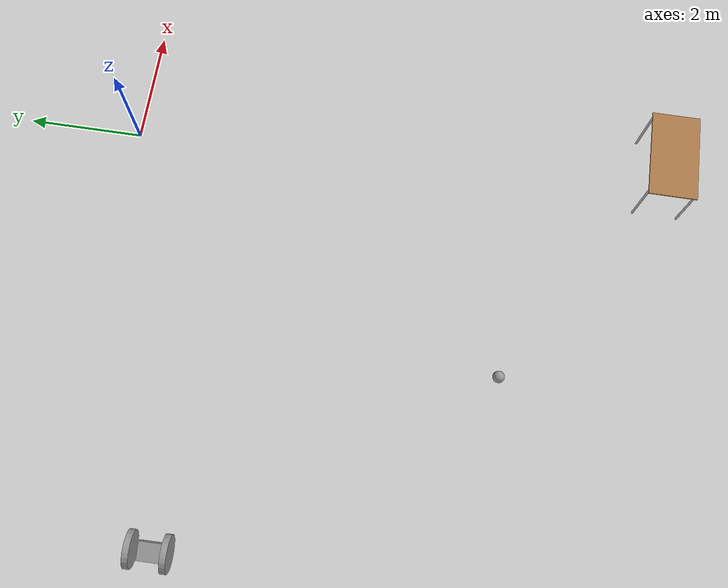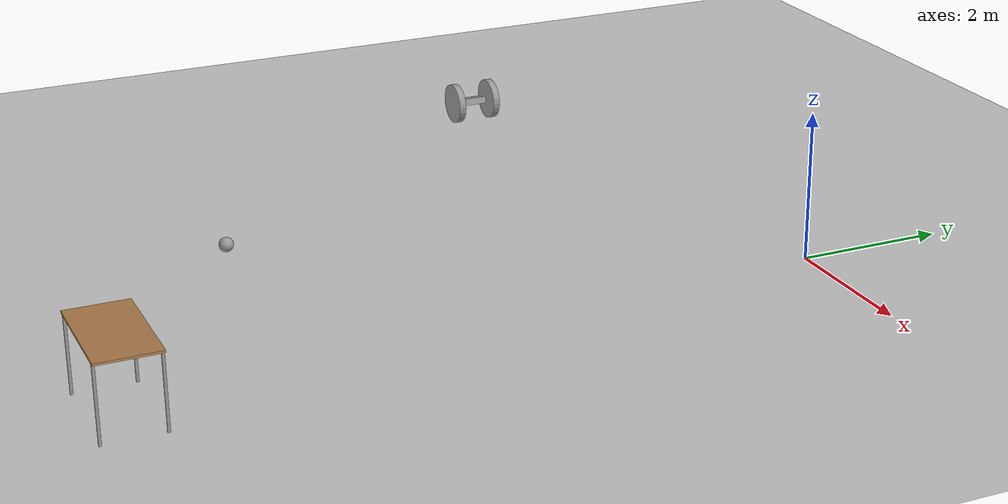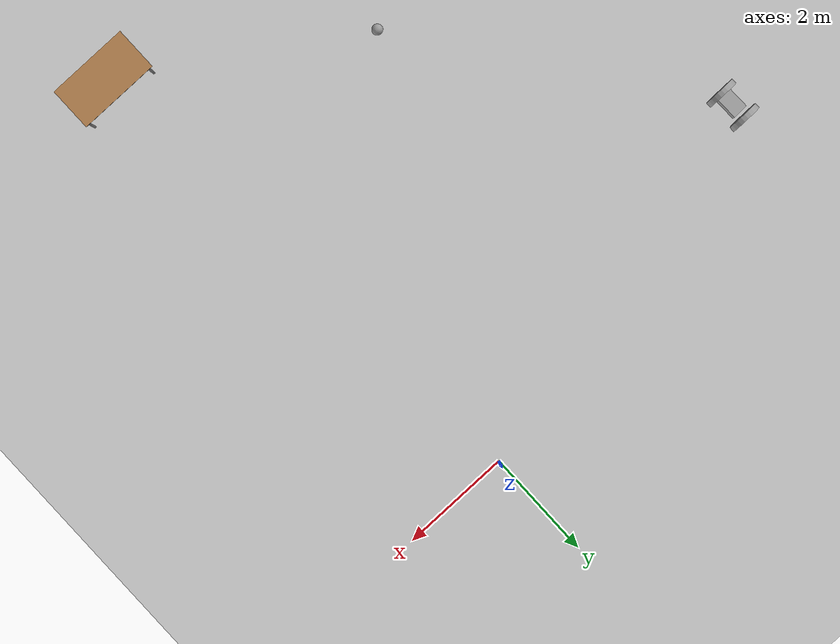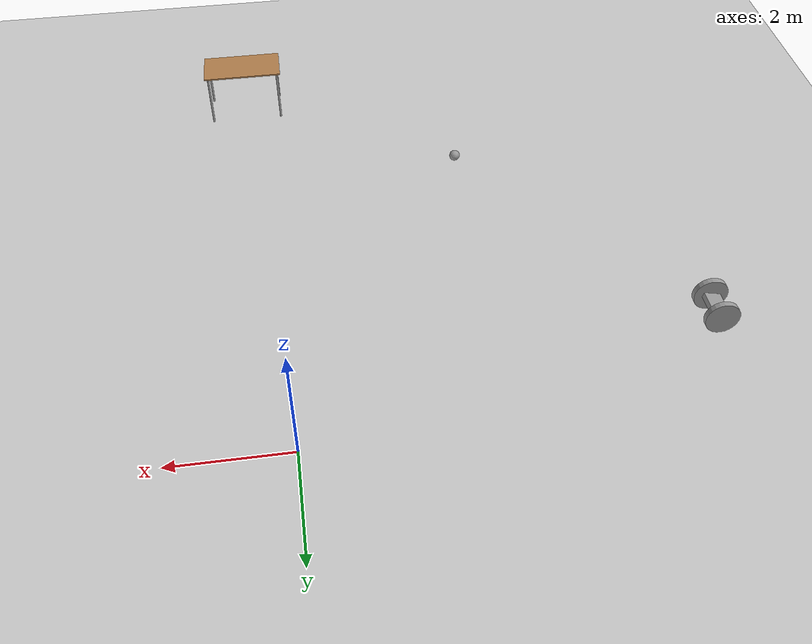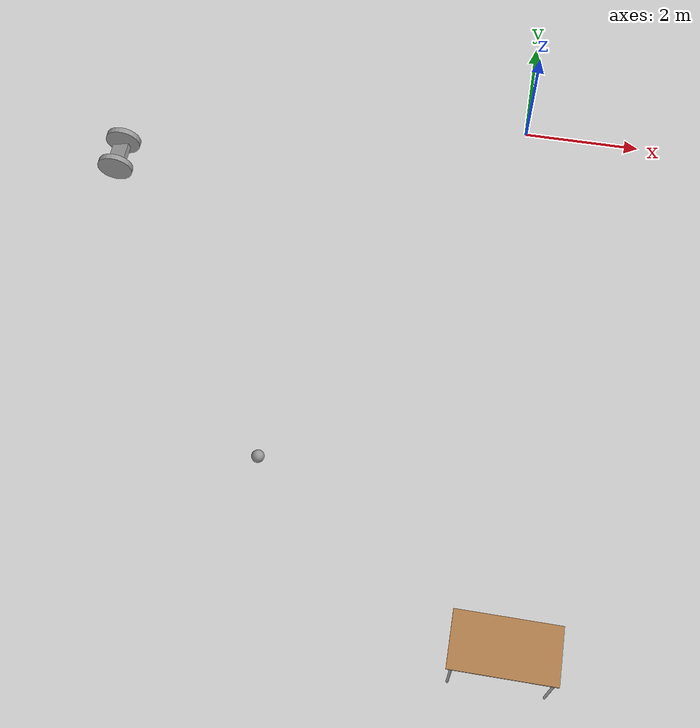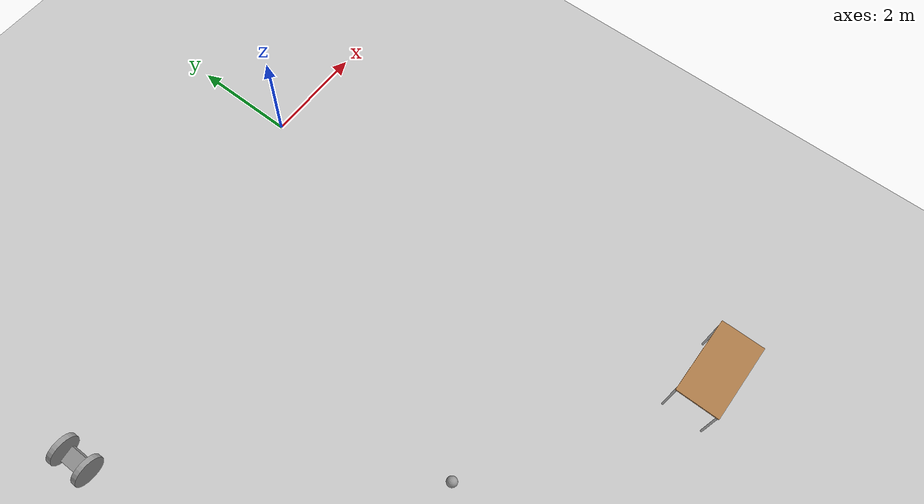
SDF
<sdf version="1.6">
 <world name="default">
  <model name="ground_plane">
   <static>1</static>
   <link name="link">
    <collision name="collision">
     <geometry><plane><normal>0 0 1</normal><size>100 100</size></plane></geometry>
     <surface>
      <contact><collide_bitmask>65535</collide_bitmask></contact>
      <friction><ode><mu>100</mu><mu2>50</mu2></ode></friction>
     </surface>
    </collision>
    <visual name="visual">
     <cast_shadows>0</cast_shadows>
     <geometry><plane><normal>0 0 1</normal><size>100 100</size></plane></geometry>
     <material>
      <script><uri>file://media/materials/scripts/gazebo.material</uri><name>Gazebo/Grey</name></script>
     </material>
    </visual>
   </link>
  </model>
  <model name="two_wheel_robot">
   <link name="link_0_clone">
    <pose>-4e-06 -0.250033 -1e-06 1.5707 -0 0</pose>
    <inertial>
     <mass>1</mass>
     <inertia><ixx>0.145833</ixx><ixy>0</ixy><ixz>0</ixz><iyy>0.145833</iyy><iyz>0</iyz><izz>0.125</izz></inertia>
    </inertial>
    <visual name="visual">
     <geometry><cylinder><radius>0.3</radius><length>0.1</length></cylinder></geometry>
     <material>
      <lighting>1</lighting>
      <script><uri>file://media/materials/scripts/gazebo.material</uri><name>Gazebo/Grey</name></script>
      <shader type="pixel"><normal_map>__default__</normal_map></shader>
      <ambient>0.3 0.3 0.3 1</ambient>
      <diffuse>0.7 0.7 0.7 1</diffuse>
      <specular>0.01 0.01 0.01 1</specular>
      <emissive>0 0 0 1</emissive>
     </material>
    </visual>
    <collision name="collision">
     <geometry><cylinder><radius>0.3</radius><length>0.1</length></cylinder></geometry>
     <surface>
      <friction>
       <ode><mu>1</mu><mu2>1</mu2><fdir1>0 0 0</fdir1><slip1>0</slip1><slip2>0</slip2></ode>
       <torsional>
        <coefficient>1</coefficient>
        <patch_radius>0</patch_radius>
        <surface_radius>0</surface_radius>
        <use_patch_radius>1</use_patch_radius>
        <ode><slip>0</slip></ode>
       </torsional>
      </friction>
      <bounce><restitution_coefficient>0</restitution_coefficient><threshold>1e+06</threshold></bounce>
      <contact>
       <collide_without_contact>0</collide_without_contact>
       <collide_without_contact_bitmask>1</collide_without_contact_bitmask>
       <collide_bitmask>1</collide_bitmask>
       <ode>
        <soft_cfm>0</soft_cfm>
        <soft_erp>0.2</soft_erp>
        <kp>1e+13</kp>
        <kd>1</kd>
        <max_vel>0.01</max_vel>
        <min_depth>0</min_depth>
       </ode>
       <bullet>
        <split_impulse>1</split_impulse>
        <split_impulse_penetration_threshold>-0.01</split_impulse_penetration_threshold>
        <soft_cfm>0</soft_cfm>
        <soft_erp>0.2</soft_erp>
        <kp>1e+13</kp>
        <kd>1</kd>
       </bullet>
      </contact>
     </surface>
    </collision>
   </link>
   <link name="link_0_clone_clone">
    <pose>0 0.319647 1e-06 1.5707 -0 0</pose>
    <inertial>
     <mass>1</mass>
     <inertia><ixx>0.145833</ixx><ixy>0</ixy><ixz>0</ixz><iyy>0.145833</iyy><iyz>0</iyz><izz>0.125</izz></inertia>
    </inertial>
    <visual name="visual">
     <geometry><cylinder><radius>0.3</radius><length>0.1</length></cylinder></geometry>
     <material>
      <lighting>1</lighting>
      <script><uri>file://media/materials/scripts/gazebo.material</uri><name>Gazebo/Grey</name></script>
      <shader type="pixel"><normal_map>__default__</normal_map></shader>
      <ambient>0.3 0.3 0.3 1</ambient>
      <diffuse>0.7 0.7 0.7 1</diffuse>
      <specular>0.01 0.01 0.01 1</specular>
      <emissive>0 0 0 1</emissive>
     </material>
    </visual>
    <collision name="collision">
     <geometry><cylinder><radius>0.3</radius><length>0.1</length></cylinder></geometry>
     <surface>
      <friction>
       <ode><mu>1</mu><mu2>1</mu2><fdir1>0 0 0</fdir1><slip1>0</slip1><slip2>0</slip2></ode>
       <torsional>
        <coefficient>1</coefficient>
        <patch_radius>0</patch_radius>
        <surface_radius>0</surface_radius>
        <use_patch_radius>1</use_patch_radius>
        <ode><slip>0</slip></ode>
       </torsional>
      </friction>
      <bounce><restitution_coefficient>0</restitution_coefficient><threshold>1e+06</threshold></bounce>
      <contact>
       <collide_without_contact>0</collide_without_contact>
       <collide_without_contact_bitmask>1</collide_without_contact_bitmask>
       <collide_bitmask>1</collide_bitmask>
       <ode>
        <soft_cfm>0</soft_cfm>
        <soft_erp>0.2</soft_erp>
        <kp>1e+13</kp>
        <kd>1</kd>
        <max_vel>0.01</max_vel>
        <min_depth>0</min_depth>
       </ode>
       <bullet>
        <split_impulse>1</split_impulse>
        <split_impulse_penetration_threshold>-0.01</split_impulse_penetration_threshold>
        <soft_cfm>0</soft_cfm>
        <soft_erp>0.2</soft_erp>
        <kp>1e+13</kp>
        <kd>1</kd>
       </bullet>
      </contact>
     </surface>
    </collision>
   </link>
   <link name="link_1">
    <pose>-0 -1e-06 0 0 -0 0</pose>
    <inertial>
     <mass>1</mass>
     <inertia>
      <ixx>0.166667</ixx>
      <ixy>0</ixy>
      <ixz>0</ixz>
      <iyy>0.166667</iyy>
      <iyz>0</iyz>
      <izz>0.166667</izz>
     </inertia>
    </inertial>
    <visual name="visual">
     <geometry><box><size>0.3 0.4 0.1</size></box></geometry>
     <material>
      <lighting>1</lighting>
      <script><uri>file://media/materials/scripts/gazebo.material</uri><name>Gazebo/Grey</name></script>
      <shader type="pixel"><normal_map>__default__</normal_map></shader>
      <ambient>0.3 0.3 0.3 1</ambient>
      <diffuse>0.7 0.7 0.7 1</diffuse>
      <specular>0.01 0.01 0.01 1</specular>
      <emissive>0 0 0 1</emissive>
     </material>
    </visual>
    <collision name="collision">
     <geometry><box><size>0.3 0.4 0.1</size></box></geometry>
     <surface>
      <friction>
       <ode><mu>1</mu><mu2>1</mu2><fdir1>0 0 0</fdir1><slip1>0</slip1><slip2>0</slip2></ode>
       <torsional>
        <coefficient>1</coefficient>
        <patch_radius>0</patch_radius>
        <surface_radius>0</surface_radius>
        <use_patch_radius>1</use_patch_radius>
        <ode><slip>0</slip></ode>
       </torsional>
      </friction>
      <bounce><restitution_coefficient>0</restitution_coefficient><threshold>1e+06</threshold></bounce>
      <contact>
       <collide_without_contact>0</collide_without_contact>
       <collide_without_contact_bitmask>1</collide_without_contact_bitmask>
       <collide_bitmask>1</collide_bitmask>
       <ode>
        <soft_cfm>0</soft_cfm>
        <soft_erp>0.2</soft_erp>
        <kp>1e+13</kp>
        <kd>1</kd>
        <max_vel>0.01</max_vel>
        <min_depth>0</min_depth>
       </ode>
       <bullet>
        <split_impulse>1</split_impulse>
        <split_impulse_penetration_threshold>-0.01</split_impulse_penetration_threshold>
        <soft_cfm>0</soft_cfm>
        <soft_erp>0.2</soft_erp>
        <kp>1e+13</kp>
        <kd>1</kd>
       </bullet>
      </contact>
     </surface>
    </collision>
   </link>
   <joint name="link_1_JOINT_0" type="revolute">
    <parent>link_1</parent>
    <child>link_0_clone</child>
    <axis>
     <xyz>0 0 1</xyz>
     <use_parent_model_frame>0</use_parent_model_frame>
     <limit>
      <lower>-1.79769e+308</lower>
      <upper>1.79769e+308</upper>
      <effort>-1</effort>
      <velocity>-1</velocity>
     </limit>
     <dynamics>
      <spring_reference>0</spring_reference>
      <spring_stiffness>0</spring_stiffness>
      <damping>0</damping>
     </dynamics>
    </axis>
    <physics>
     <ode><limit><cfm>0</cfm><erp>0.2</erp></limit><suspension><cfm>0</cfm><erp>0.2</erp></suspension></ode>
    </physics>
   </joint>
   <joint name="link_1_JOINT_1" type="revolute">
    <parent>link_1</parent>
    <child>link_0_clone_clone</child>
    <axis>
     <xyz>0 0 1</xyz>
     <use_parent_model_frame>0</use_parent_model_frame>
     <limit>
      <lower>-1.79769e+308</lower>
      <upper>1.79769e+308</upper>
      <effort>-1</effort>
      <velocity>-1</velocity>
     </limit>
     <dynamics>
      <spring_reference>0</spring_reference>
      <spring_stiffness>0</spring_stiffness>
      <damping>0</damping>
     </dynamics>
    </axis>
    <physics>
     <ode><limit><cfm>0</cfm><erp>0.2</erp></limit><suspension><cfm>0</cfm><erp>0.2</erp></suspension></ode>
    </physics>
   </joint>
   <static>0</static>
   <pose>-7.0026 -1.81157 0.300018 5.7e-05 -0.250763 0.019739</pose>
  </model>
  <model name="table_clone">
   <static>1</static>
   <link name="link">
    <collision name="surface">
     <pose>0 0 1 0 -0 0</pose>
     <geometry><box><size>1.5 0.8 0.03</size></box></geometry>
     <surface><friction><ode><mu>0.6</mu><mu2>0.6</mu2></ode></friction></surface>
    </collision>
    <visual name="visual1">
     <pose>0 0 1 0 -0 0</pose>
     <geometry><box><size>1.5 0.8 0.03</size></box></geometry>
     <material>
      <script><uri>file://media/materials/scripts/gazebo.material</uri><name>Gazebo/Wood</name></script>
     </material>
    </visual>
    <collision name="front_left_leg">
     <pose>0.68 0.38 0.5 0 -0 0</pose>
     <geometry><cylinder><radius>0.02</radius><length>1</length></cylinder></geometry>
    </collision>
    <visual name="front_left_leg">
     <pose>0.68 0.38 0.5 0 -0 0</pose>
     <geometry><cylinder><radius>0.02</radius><length>1</length></cylinder></geometry>
     <material>
      <script><uri>file://media/materials/scripts/gazebo.material</uri><name>Gazebo/Grey</name></script>
     </material>
    </visual>
    <collision name="front_right_leg">
     <pose>0.68 -0.38 0.5 0 -0 0</pose>
     <geometry><cylinder><radius>0.02</radius><length>1</length></cylinder></geometry>
    </collision>
    <visual name="front_right_leg">
     <pose>0.68 -0.38 0.5 0 -0 0</pose>
     <geometry><cylinder><radius>0.02</radius><length>1</length></cylinder></geometry>
     <material>
      <script><uri>file://media/materials/scripts/gazebo.material</uri><name>Gazebo/Grey</name></script>
     </material>
    </visual>
    <collision name="back_right_leg">
     <pose>-0.68 -0.38 0.5 0 -0 0</pose>
     <geometry><cylinder><radius>0.02</radius><length>1</length></cylinder></geometry>
    </collision>
    <visual name="back_right_leg">
     <pose>-0.68 -0.38 0.5 0 -0 0</pose>
     <geometry><cylinder><radius>0.02</radius><length>1</length></cylinder></geometry>
     <material>
      <script><uri>file://media/materials/scripts/gazebo.material</uri><name>Gazebo/Grey</name></script>
     </material>
    </visual>
    <collision name="back_left_leg">
     <pose>-0.68 0.38 0.5 0 -0 0</pose>
     <geometry><cylinder><radius>0.02</radius><length>1</length></cylinder></geometry>
    </collision>
    <visual name="back_left_leg">
     <pose>-0.68 0.38 0.5 0 -0 0</pose>
     <geometry><cylinder><radius>0.02</radius><length>1</length></cylinder></geometry>
     <material>
      <script><uri>file://media/materials/scripts/gazebo.material</uri><name>Gazebo/Grey</name></script>
     </material>
    </visual>
   </link>
   <pose>0.533862 -9.22852 0 0 -0 0</pose>
  </model>
  <model name="my_ball_0">
   <link name="link">
    <inertial>
     <mass>1</mass>
     <inertia><ixx>0.1</ixx><ixy>0</ixy><ixz>0</ixz><iyy>0.1</iyy><iyz>0</iyz><izz>0.1</izz></inertia>
    </inertial>
    <visual name="visual">
     <geometry><sphere><radius>0.1</radius></sphere></geometry>
     <material>
      <script><name>Gazebo/Grey</name><uri>file://media/materials/scripts/gazebo.material</uri></script>
      <ambient>1 1 1 1</ambient>
      <diffuse>1 1 1 1</diffuse>
      <specular>1 1 1 1</specular>
      <emissive>0 0 0 1</emissive>
      <shader type="vertex"><normal_map>__default__</normal_map></shader>
     </material>
    </visual>
    <collision name="collision">
     <geometry><sphere><radius>0.1</radius></sphere></geometry>
     <surface>
      <friction>
       <ode><mu>1</mu><mu2>1</mu2><fdir1>0 0 0</fdir1><slip1>0</slip1><slip2>0</slip2></ode>
       <torsional>
        <coefficient>1</coefficient>
        <patch_radius>0</patch_radius>
        <surface_radius>0</surface_radius>
        <use_patch_radius>1</use_patch_radius>
        <ode><slip>0</slip></ode>
       </torsional>
      </friction>
      <bounce><restitution_coefficient>0</restitution_coefficient><threshold>1e+06</threshold></bounce>
      <contact>
       <collide_without_contact>0</collide_without_contact>
       <collide_without_contact_bitmask>1</collide_without_contact_bitmask>
       <collide_bitmask>1</collide_bitmask>
       <ode>
        <soft_cfm>0</soft_cfm>
        <soft_erp>0.2</soft_erp>
        <kp>1e+13</kp>
        <kd>1</kd>
        <max_vel>0.01</max_vel>
        <min_depth>0</min_depth>
       </ode>
       <bullet>
        <split_impulse>1</split_impulse>
        <split_impulse_penetration_threshold>-0.01</split_impulse_penetration_threshold>
        <soft_cfm>0</soft_cfm>
        <soft_erp>0.2</soft_erp>
        <kp>1e+13</kp>
        <kd>1</kd>
       </bullet>
      </contact>
     </surface>
    </collision>
   </link>
   <static>0</static>
   <pose>-3.445 -6.8119 0.1 0 -0 0</pose>
  </model>
 </world>
</sdf>
